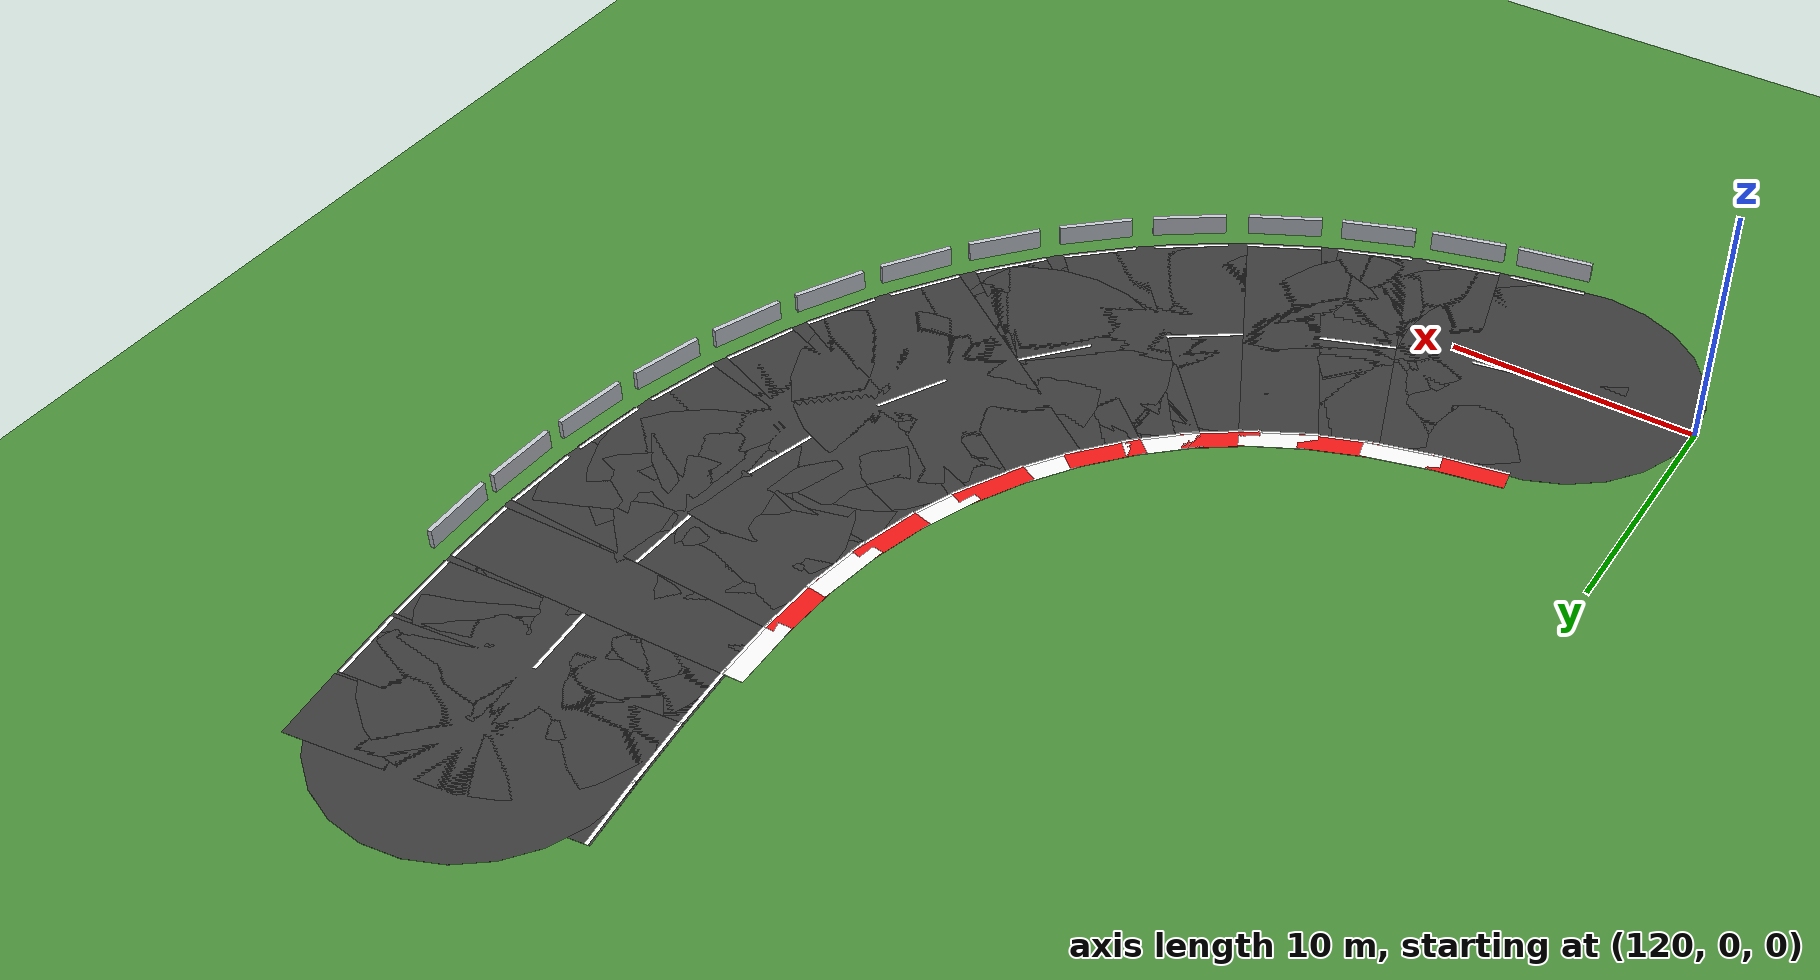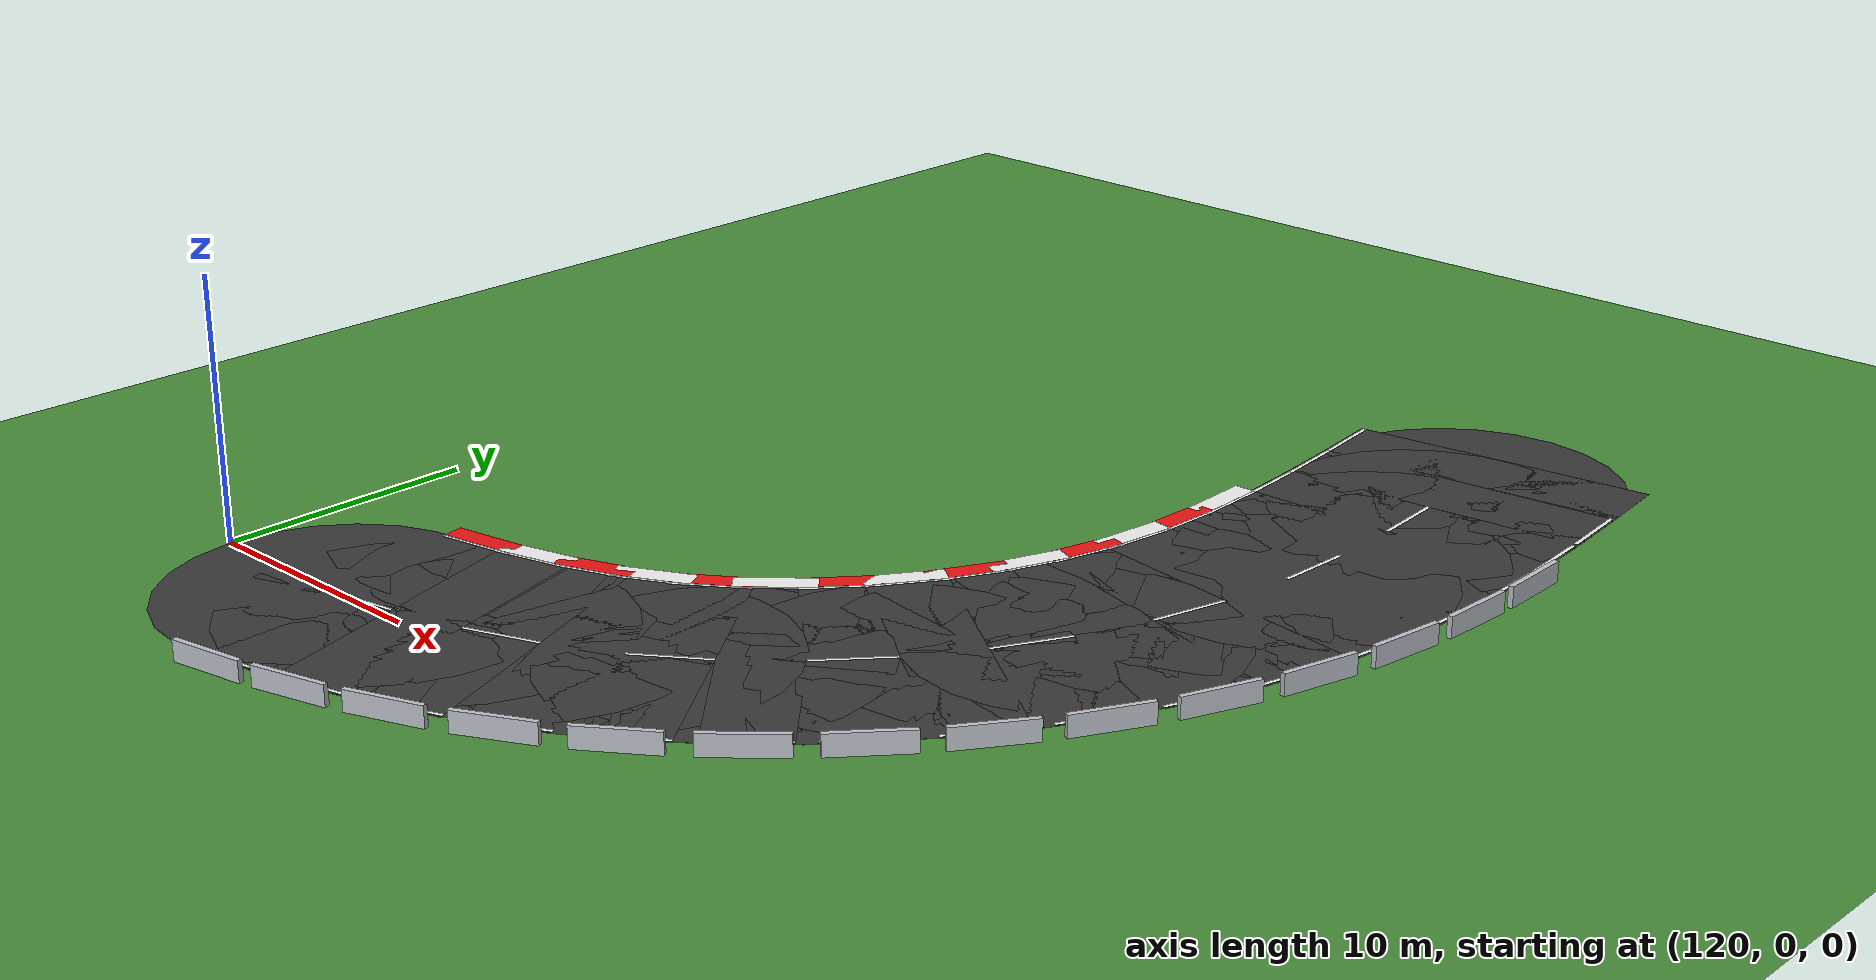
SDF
<sdf version="1.6">
 <world name="sem_silesia_ring_2026">
  <model name="ground_plane">
   <static>true</static>
   <link name="link">
    <collision name="collision">
     <geometry><plane><normal>0 0 1</normal><size>1200 1200</size></plane></geometry>
     <surface><friction><ode><mu>0.6</mu><mu2>0.6</mu2></ode></friction></surface>
    </collision>
    <visual name="visual">
     <geometry><plane><normal>0 0 1</normal><size>1200 1200</size></plane></geometry>
     <material><ambient>0.28 0.55 0.22 1</ambient><diffuse>0.28 0.55 0.22 1</diffuse></material>
    </visual>
   </link>
  </model>
  <model name="road_s42">
   <static>true</static>
   <pose>127.4804 0.1931 0.0030 0 0 0.1788</pose>
   <link name="link">
    <visual name="v">
     <geometry><box><size>3.0019 12.0000 0.0060</size></box></geometry>
     <material><ambient>0.22 0.22 0.22 1</ambient><diffuse>0.22 0.22 0.22 1</diffuse></material>
    </visual>
    <collision name="c">
     <geometry><box><size>3.0019 12.0000 0.0060</size></box></geometry>
     <surface><friction><ode><mu>0.9</mu><mu2>0.9</mu2></ode></friction></surface>
    </collision>
   </link>
  </model>
  <model name="road_jnt42">
   <static>true</static>
   <pose>126.0033 -0.0738 0.0030 0 0 0</pose>
   <link name="link">
    <visual name="v">
     <geometry><cylinder><radius>6.0000</radius><length>0.0060</length></cylinder></geometry>
     <material><ambient>0.22 0.22 0.22 1</ambient><diffuse>0.22 0.22 0.22 1</diffuse></material>
    </visual>
    <collision name="c">
     <geometry><cylinder><radius>6.0000</radius><length>0.0060</length></cylinder></geometry>
     <surface><friction><ode><mu>0.9</mu><mu2>0.9</mu2></ode></friction></surface>
    </collision>
   </link>
  </model>
  <model name="wl_L_s42">
   <static>true</static>
   <pose>126.4400 5.9499 0.0070 0 0 0.1788</pose>
   <link name="link">
    <visual name="v">
     <geometry><box><size>3.0019 0.1500 0.0080</size></box></geometry>
     <material><ambient>0.95 0.95 0.95 1</ambient><diffuse>0.95 0.95 0.95 1</diffuse></material>
    </visual>
   </link>
  </model>
  <model name="wl_R_s42">
   <static>true</static>
   <pose>128.5207 -5.5636 0.0070 0 0 0.1788</pose>
   <link name="link">
    <visual name="v">
     <geometry><box><size>3.0019 0.1500 0.0080</size></box></geometry>
     <material><ambient>0.95 0.95 0.95 1</ambient><diffuse>0.95 0.95 0.95 1</diffuse></material>
    </visual>
   </link>
  </model>
  <model name="cd_s42">
   <static>true</static>
   <pose>127.4804 0.1931 0.0070 0 0 0.1788</pose>
   <link name="link">
    <visual name="v">
     <geometry><box><size>3.0019 0.1500 0.0080</size></box></geometry>
     <material><ambient>0.95 0.95 0.95 1</ambient><diffuse>0.95 0.95 0.95 1</diffuse></material>
    </visual>
   </link>
  </model>
  <model name="kerb_L_42">
   <static>true</static>
   <pose>126.3600 6.3927 0.0120 0 0 0.1788</pose>
   <link name="link">
    <visual name="v">
     <geometry><box><size>3.0019 0.8000 0.0160</size></box></geometry>
     <material><ambient>0.92 0.08 0.08 1</ambient><diffuse>0.92 0.08 0.08 1</diffuse></material>
    </visual>
   </link>
  </model>
  <model name="arm_outR_42">
   <static>true</static>
   <pose>128.6897 -6.4985 0.4000 0 0 0.1788</pose>
   <link name="link">
    <visual name="v">
     <geometry><box><size>3.0019 0.2000 0.8000</size></box></geometry>
     <material><ambient>0.75 0.77 0.80 1</ambient><diffuse>0.75 0.77 0.80 1</diffuse></material>
    </visual>
    <collision name="c">
     <geometry><box><size>3.0019 0.2000 0.8000</size></box></geometry>
     <surface><friction><ode><mu>0.8</mu><mu2>0.8</mu2></ode></friction></surface>
    </collision>
   </link>
  </model>
  <model name="road_s43">
   <static>true</static>
   <pose>130.4088 0.8418 0.0030 0 0 0.2572</pose>
   <link name="link">
    <visual name="v">
     <geometry><box><size>3.0016 12.0000 0.0060</size></box></geometry>
     <material><ambient>0.22 0.22 0.22 1</ambient><diffuse>0.22 0.22 0.22 1</diffuse></material>
    </visual>
    <collision name="c">
     <geometry><box><size>3.0016 12.0000 0.0060</size></box></geometry>
     <surface><friction><ode><mu>0.9</mu><mu2>0.9</mu2></ode></friction></surface>
    </collision>
   </link>
  </model>
  <model name="road_jnt43">
   <static>true</static>
   <pose>128.9574 0.4600 0.0030 0 0 0</pose>
   <link name="link">
    <visual name="v">
     <geometry><cylinder><radius>6.0000</radius><length>0.0060</length></cylinder></geometry>
     <material><ambient>0.22 0.22 0.22 1</ambient><diffuse>0.22 0.22 0.22 1</diffuse></material>
    </visual>
    <collision name="c">
     <geometry><cylinder><radius>6.0000</radius><length>0.0060</length></cylinder></geometry>
     <surface><friction><ode><mu>0.9</mu><mu2>0.9</mu2></ode></friction></surface>
    </collision>
   </link>
  </model>
  <model name="wl_L_s43">
   <static>true</static>
   <pose>128.9207 6.4994 0.0070 0 0 0.2572</pose>
   <link name="link">
    <visual name="v">
     <geometry><box><size>3.0016 0.1500 0.0080</size></box></geometry>
     <material><ambient>0.95 0.95 0.95 1</ambient><diffuse>0.95 0.95 0.95 1</diffuse></material>
    </visual>
   </link>
  </model>
  <model name="wl_R_s43">
   <static>true</static>
   <pose>131.8969 -4.8157 0.0070 0 0 0.2572</pose>
   <link name="link">
    <visual name="v">
     <geometry><box><size>3.0016 0.1500 0.0080</size></box></geometry>
     <material><ambient>0.95 0.95 0.95 1</ambient><diffuse>0.95 0.95 0.95 1</diffuse></material>
    </visual>
   </link>
  </model>
  <model name="kerb_L_43">
   <static>true</static>
   <pose>128.8062 6.9346 0.0120 0 0 0.2572</pose>
   <link name="link">
    <visual name="v">
     <geometry><box><size>3.0016 0.8000 0.0160</size></box></geometry>
     <material><ambient>0.95 0.95 0.95 1</ambient><diffuse>0.95 0.95 0.95 1</diffuse></material>
    </visual>
   </link>
  </model>
  <model name="arm_outR_43">
   <static>true</static>
   <pose>132.1386 -5.7345 0.4000 0 0 0.2572</pose>
   <link name="link">
    <visual name="v">
     <geometry><box><size>3.0016 0.2000 0.8000</size></box></geometry>
     <material><ambient>0.75 0.77 0.80 1</ambient><diffuse>0.75 0.77 0.80 1</diffuse></material>
    </visual>
    <collision name="c">
     <geometry><box><size>3.0016 0.2000 0.8000</size></box></geometry>
     <surface><friction><ode><mu>0.8</mu><mu2>0.8</mu2></ode></friction></surface>
    </collision>
   </link>
  </model>
  <model name="road_s44">
   <static>true</static>
   <pose>133.2665 1.7469 0.0030 0 0 0.3562</pose>
   <link name="link">
    <visual name="v">
     <geometry><box><size>3.0010 12.0000 0.0060</size></box></geometry>
     <material><ambient>0.22 0.22 0.22 1</ambient><diffuse>0.22 0.22 0.22 1</diffuse></material>
    </visual>
    <collision name="c">
     <geometry><box><size>3.0010 12.0000 0.0060</size></box></geometry>
     <surface><friction><ode><mu>0.9</mu><mu2>0.9</mu2></ode></friction></surface>
    </collision>
   </link>
  </model>
  <model name="road_jnt44">
   <static>true</static>
   <pose>131.8602 1.2236 0.0030 0 0 0</pose>
   <link name="link">
    <visual name="v">
     <geometry><cylinder><radius>6.0000</radius><length>0.0060</length></cylinder></geometry>
     <material><ambient>0.22 0.22 0.22 1</ambient><diffuse>0.22 0.22 0.22 1</diffuse></material>
    </visual>
    <collision name="c">
     <geometry><cylinder><radius>6.0000</radius><length>0.0060</length></cylinder></geometry>
     <surface><friction><ode><mu>0.9</mu><mu2>0.9</mu2></ode></friction></surface>
    </collision>
   </link>
  </model>
  <model name="wl_L_s44">
   <static>true</static>
   <pose>131.2265 7.2296 0.0070 0 0 0.3562</pose>
   <link name="link">
    <visual name="v">
     <geometry><box><size>3.0010 0.1500 0.0080</size></box></geometry>
     <material><ambient>0.95 0.95 0.95 1</ambient><diffuse>0.95 0.95 0.95 1</diffuse></material>
    </visual>
   </link>
  </model>
  <model name="wl_R_s44">
   <static>true</static>
   <pose>135.3066 -3.7359 0.0070 0 0 0.3562</pose>
   <link name="link">
    <visual name="v">
     <geometry><box><size>3.0010 0.1500 0.0080</size></box></geometry>
     <material><ambient>0.95 0.95 0.95 1</ambient><diffuse>0.95 0.95 0.95 1</diffuse></material>
    </visual>
   </link>
  </model>
  <model name="cd_s44">
   <static>true</static>
   <pose>133.2665 1.7469 0.0070 0 0 0.3562</pose>
   <link name="link">
    <visual name="v">
     <geometry><box><size>3.0010 0.1500 0.0080</size></box></geometry>
     <material><ambient>0.95 0.95 0.95 1</ambient><diffuse>0.95 0.95 0.95 1</diffuse></material>
    </visual>
   </link>
  </model>
  <model name="kerb_L_44">
   <static>true</static>
   <pose>131.0696 7.6514 0.0120 0 0 0.3562</pose>
   <link name="link">
    <visual name="v">
     <geometry><box><size>3.0010 0.8000 0.0160</size></box></geometry>
     <material><ambient>0.92 0.08 0.08 1</ambient><diffuse>0.92 0.08 0.08 1</diffuse></material>
    </visual>
   </link>
  </model>
  <model name="arm_outR_44">
   <static>true</static>
   <pose>135.6379 -4.6263 0.4000 0 0 0.3562</pose>
   <link name="link">
    <visual name="v">
     <geometry><box><size>3.0010 0.2000 0.8000</size></box></geometry>
     <material><ambient>0.75 0.77 0.80 1</ambient><diffuse>0.75 0.77 0.80 1</diffuse></material>
    </visual>
    <collision name="c">
     <geometry><box><size>3.0010 0.2000 0.8000</size></box></geometry>
     <surface><friction><ode><mu>0.8</mu><mu2>0.8</mu2></ode></friction></surface>
    </collision>
   </link>
  </model>
  <model name="road_s45">
   <static>true</static>
   <pose>136.0057 2.9587 0.0030 0 0 0.4769</pose>
   <link name="link">
    <visual name="v">
     <geometry><box><size>3.0004 12.0000 0.0060</size></box></geometry>
     <material><ambient>0.22 0.22 0.22 1</ambient><diffuse>0.22 0.22 0.22 1</diffuse></material>
    </visual>
    <collision name="c">
     <geometry><box><size>3.0004 12.0000 0.0060</size></box></geometry>
     <surface><friction><ode><mu>0.9</mu><mu2>0.9</mu2></ode></friction></surface>
    </collision>
   </link>
  </model>
  <model name="road_jnt45">
   <static>true</static>
   <pose>134.6729 2.2701 0.0030 0 0 0</pose>
   <link name="link">
    <visual name="v">
     <geometry><cylinder><radius>6.0000</radius><length>0.0060</length></cylinder></geometry>
     <material><ambient>0.22 0.22 0.22 1</ambient><diffuse>0.22 0.22 0.22 1</diffuse></material>
    </visual>
    <collision name="c">
     <geometry><cylinder><radius>6.0000</radius><length>0.0060</length></cylinder></geometry>
     <surface><friction><ode><mu>0.9</mu><mu2>0.9</mu2></ode></friction></surface>
    </collision>
   </link>
  </model>
  <model name="wl_L_s45">
   <static>true</static>
   <pose>133.3204 8.1560 0.0070 0 0 0.4769</pose>
   <link name="link">
    <visual name="v">
     <geometry><box><size>3.0004 0.1500 0.0080</size></box></geometry>
     <material><ambient>0.95 0.95 0.95 1</ambient><diffuse>0.95 0.95 0.95 1</diffuse></material>
    </visual>
   </link>
  </model>
  <model name="wl_R_s45">
   <static>true</static>
   <pose>138.6909 -2.2386 0.0070 0 0 0.4769</pose>
   <link name="link">
    <visual name="v">
     <geometry><box><size>3.0004 0.1500 0.0080</size></box></geometry>
     <material><ambient>0.95 0.95 0.95 1</ambient><diffuse>0.95 0.95 0.95 1</diffuse></material>
    </visual>
   </link>
  </model>
  <model name="kerb_L_45">
   <static>true</static>
   <pose>133.1139 8.5558 0.0120 0 0 0.4769</pose>
   <link name="link">
    <visual name="v">
     <geometry><box><size>3.0004 0.8000 0.0160</size></box></geometry>
     <material><ambient>0.95 0.95 0.95 1</ambient><diffuse>0.95 0.95 0.95 1</diffuse></material>
    </visual>
   </link>
  </model>
  <model name="arm_outR_45">
   <static>true</static>
   <pose>139.1270 -3.0826 0.4000 0 0 0.4769</pose>
   <link name="link">
    <visual name="v">
     <geometry><box><size>3.0004 0.2000 0.8000</size></box></geometry>
     <material><ambient>0.75 0.77 0.80 1</ambient><diffuse>0.75 0.77 0.80 1</diffuse></material>
    </visual>
    <collision name="c">
     <geometry><box><size>3.0004 0.2000 0.8000</size></box></geometry>
     <surface><friction><ode><mu>0.8</mu><mu2>0.8</mu2></ode></friction></surface>
    </collision>
   </link>
  </model>
  <model name="road_s46">
   <static>true</static>
   <pose>138.5668 4.5086 0.0030 0 0 0.6115</pose>
   <link name="link">
    <visual name="v">
     <geometry><box><size>3.0003 12.0000 0.0060</size></box></geometry>
     <material><ambient>0.22 0.22 0.22 1</ambient><diffuse>0.22 0.22 0.22 1</diffuse></material>
    </visual>
    <collision name="c">
     <geometry><box><size>3.0003 12.0000 0.0060</size></box></geometry>
     <surface><friction><ode><mu>0.9</mu><mu2>0.9</mu2></ode></friction></surface>
    </collision>
   </link>
  </model>
  <model name="road_jnt46">
   <static>true</static>
   <pose>137.3385 3.6473 0.0030 0 0 0</pose>
   <link name="link">
    <visual name="v">
     <geometry><cylinder><radius>6.0000</radius><length>0.0060</length></cylinder></geometry>
     <material><ambient>0.22 0.22 0.22 1</ambient><diffuse>0.22 0.22 0.22 1</diffuse></material>
    </visual>
    <collision name="c">
     <geometry><cylinder><radius>6.0000</radius><length>0.0060</length></cylinder></geometry>
     <surface><friction><ode><mu>0.9</mu><mu2>0.9</mu2></ode></friction></surface>
    </collision>
   </link>
  </model>
  <model name="wl_L_s46">
   <static>true</static>
   <pose>135.2083 9.2985 0.0070 0 0 0.6115</pose>
   <link name="link">
    <visual name="v">
     <geometry><box><size>3.0003 0.1500 0.0080</size></box></geometry>
     <material><ambient>0.95 0.95 0.95 1</ambient><diffuse>0.95 0.95 0.95 1</diffuse></material>
    </visual>
   </link>
  </model>
  <model name="wl_R_s46">
   <static>true</static>
   <pose>141.9253 -0.2813 0.0070 0 0 0.6115</pose>
   <link name="link">
    <visual name="v">
     <geometry><box><size>3.0003 0.1500 0.0080</size></box></geometry>
     <material><ambient>0.95 0.95 0.95 1</ambient><diffuse>0.95 0.95 0.95 1</diffuse></material>
    </visual>
   </link>
  </model>
  <model name="cd_s46">
   <static>true</static>
   <pose>138.5668 4.5086 0.0070 0 0 0.6115</pose>
   <link name="link">
    <visual name="v">
     <geometry><box><size>3.0003 0.1500 0.0080</size></box></geometry>
     <material><ambient>0.95 0.95 0.95 1</ambient><diffuse>0.95 0.95 0.95 1</diffuse></material>
    </visual>
   </link>
  </model>
  <model name="kerb_L_46">
   <static>true</static>
   <pose>134.9499 9.6669 0.0120 0 0 0.6115</pose>
   <link name="link">
    <visual name="v">
     <geometry><box><size>3.0003 0.8000 0.0160</size></box></geometry>
     <material><ambient>0.92 0.08 0.08 1</ambient><diffuse>0.92 0.08 0.08 1</diffuse></material>
    </visual>
   </link>
  </model>
  <model name="arm_outR_46">
   <static>true</static>
   <pose>142.4707 -1.0592 0.4000 0 0 0.6115</pose>
   <link name="link">
    <visual name="v">
     <geometry><box><size>3.0003 0.2000 0.8000</size></box></geometry>
     <material><ambient>0.75 0.77 0.80 1</ambient><diffuse>0.75 0.77 0.80 1</diffuse></material>
    </visual>
    <collision name="c">
     <geometry><box><size>3.0003 0.2000 0.8000</size></box></geometry>
     <surface><friction><ode><mu>0.8</mu><mu2>0.8</mu2></ode></friction></surface>
    </collision>
   </link>
  </model>
  <model name="road_s47">
   <static>true</static>
   <pose>140.9021 6.3824 0.0030 0 0 0.7409</pose>
   <link name="link">
    <visual name="v">
     <geometry><box><size>3.0006 12.0000 0.0060</size></box></geometry>
     <material><ambient>0.22 0.22 0.22 1</ambient><diffuse>0.22 0.22 0.22 1</diffuse></material>
    </visual>
    <collision name="c">
     <geometry><box><size>3.0006 12.0000 0.0060</size></box></geometry>
     <surface><friction><ode><mu>0.9</mu><mu2>0.9</mu2></ode></friction></surface>
    </collision>
   </link>
  </model>
  <model name="road_jnt47">
   <static>true</static>
   <pose>139.7951 5.3698 0.0030 0 0 0</pose>
   <link name="link">
    <visual name="v">
     <geometry><cylinder><radius>6.0000</radius><length>0.0060</length></cylinder></geometry>
     <material><ambient>0.22 0.22 0.22 1</ambient><diffuse>0.22 0.22 0.22 1</diffuse></material>
    </visual>
    <collision name="c">
     <geometry><cylinder><radius>6.0000</radius><length>0.0060</length></cylinder></geometry>
     <surface><friction><ode><mu>0.9</mu><mu2>0.9</mu2></ode></friction></surface>
    </collision>
   </link>
  </model>
  <model name="wl_L_s47">
   <static>true</static>
   <pose>136.9537 10.6990 0.0070 0 0 0.7409</pose>
   <link name="link">
    <visual name="v">
     <geometry><box><size>3.0006 0.1500 0.0080</size></box></geometry>
     <material><ambient>0.95 0.95 0.95 1</ambient><diffuse>0.95 0.95 0.95 1</diffuse></material>
    </visual>
   </link>
  </model>
  <model name="wl_R_s47">
   <static>true</static>
   <pose>144.8505 2.0658 0.0070 0 0 0.7409</pose>
   <link name="link">
    <visual name="v">
     <geometry><box><size>3.0006 0.1500 0.0080</size></box></geometry>
     <material><ambient>0.95 0.95 0.95 1</ambient><diffuse>0.95 0.95 0.95 1</diffuse></material>
    </visual>
   </link>
  </model>
  <model name="kerb_L_47">
   <static>true</static>
   <pose>136.6500 11.0310 0.0120 0 0 0.7409</pose>
   <link name="link">
    <visual name="v">
     <geometry><box><size>3.0006 0.8000 0.0160</size></box></geometry>
     <material><ambient>0.95 0.95 0.95 1</ambient><diffuse>0.95 0.95 0.95 1</diffuse></material>
    </visual>
   </link>
  </model>
  <model name="arm_outR_47">
   <static>true</static>
   <pose>145.4917 1.3649 0.4000 0 0 0.7409</pose>
   <link name="link">
    <visual name="v">
     <geometry><box><size>3.0006 0.2000 0.8000</size></box></geometry>
     <material><ambient>0.75 0.77 0.80 1</ambient><diffuse>0.75 0.77 0.80 1</diffuse></material>
    </visual>
    <collision name="c">
     <geometry><box><size>3.0006 0.2000 0.8000</size></box></geometry>
     <surface><friction><ode><mu>0.8</mu><mu2>0.8</mu2></ode></friction></surface>
    </collision>
   </link>
  </model>
  <model name="road_s48">
   <static>true</static>
   <pose>142.9847 8.5350 0.0030 0 0 0.8629</pose>
   <link name="link">
    <visual name="v">
     <geometry><box><size>3.0008 12.0000 0.0060</size></box></geometry>
     <material><ambient>0.22 0.22 0.22 1</ambient><diffuse>0.22 0.22 0.22 1</diffuse></material>
    </visual>
    <collision name="c">
     <geometry><box><size>3.0008 12.0000 0.0060</size></box></geometry>
     <surface><friction><ode><mu>0.9</mu><mu2>0.9</mu2></ode></friction></surface>
    </collision>
   </link>
  </model>
  <model name="road_jnt48">
   <static>true</static>
   <pose>142.0091 7.3950 0.0030 0 0 0</pose>
   <link name="link">
    <visual name="v">
     <geometry><cylinder><radius>6.0000</radius><length>0.0060</length></cylinder></geometry>
     <material><ambient>0.22 0.22 0.22 1</ambient><diffuse>0.22 0.22 0.22 1</diffuse></material>
    </visual>
    <collision name="c">
     <geometry><cylinder><radius>6.0000</radius><length>0.0060</length></cylinder></geometry>
     <surface><friction><ode><mu>0.9</mu><mu2>0.9</mu2></ode></friction></surface>
    </collision>
   </link>
  </model>
  <model name="wl_L_s48">
   <static>true</static>
   <pose>138.5401 12.3386 0.0070 0 0 0.8629</pose>
   <link name="link">
    <visual name="v">
     <geometry><box><size>3.0008 0.1500 0.0080</size></box></geometry>
     <material><ambient>0.95 0.95 0.95 1</ambient><diffuse>0.95 0.95 0.95 1</diffuse></material>
    </visual>
   </link>
  </model>
  <model name="wl_R_s48">
   <static>true</static>
   <pose>147.4293 4.7313 0.0070 0 0 0.8629</pose>
   <link name="link">
    <visual name="v">
     <geometry><box><size>3.0008 0.1500 0.0080</size></box></geometry>
     <material><ambient>0.95 0.95 0.95 1</ambient><diffuse>0.95 0.95 0.95 1</diffuse></material>
    </visual>
   </link>
  </model>
  <model name="cd_s48">
   <static>true</static>
   <pose>142.9847 8.5350 0.0070 0 0 0.8629</pose>
   <link name="link">
    <visual name="v">
     <geometry><box><size>3.0008 0.1500 0.0080</size></box></geometry>
     <material><ambient>0.95 0.95 0.95 1</ambient><diffuse>0.95 0.95 0.95 1</diffuse></material>
    </visual>
   </link>
  </model>
  <model name="kerb_L_48">
   <static>true</static>
   <pose>138.1982 12.6312 0.0120 0 0 0.8629</pose>
   <link name="link">
    <visual name="v">
     <geometry><box><size>3.0008 0.8000 0.0160</size></box></geometry>
     <material><ambient>0.92 0.08 0.08 1</ambient><diffuse>0.92 0.08 0.08 1</diffuse></material>
    </visual>
   </link>
  </model>
  <model name="arm_outR_48">
   <static>true</static>
   <pose>148.1511 4.1136 0.4000 0 0 0.8629</pose>
   <link name="link">
    <visual name="v">
     <geometry><box><size>3.0008 0.2000 0.8000</size></box></geometry>
     <material><ambient>0.75 0.77 0.80 1</ambient><diffuse>0.75 0.77 0.80 1</diffuse></material>
    </visual>
    <collision name="c">
     <geometry><box><size>3.0008 0.2000 0.8000</size></box></geometry>
     <surface><friction><ode><mu>0.8</mu><mu2>0.8</mu2></ode></friction></surface>
    </collision>
   </link>
  </model>
  <model name="road_s49">
   <static>true</static>
   <pose>144.7962 10.9209 0.0030 0 0 0.9798</pose>
   <link name="link">
    <visual name="v">
     <geometry><box><size>3.0009 12.0000 0.0060</size></box></geometry>
     <material><ambient>0.22 0.22 0.22 1</ambient><diffuse>0.22 0.22 0.22 1</diffuse></material>
    </visual>
    <collision name="c">
     <geometry><box><size>3.0009 12.0000 0.0060</size></box></geometry>
     <surface><friction><ode><mu>0.9</mu><mu2>0.9</mu2></ode></friction></surface>
    </collision>
   </link>
  </model>
  <model name="road_jnt49">
   <static>true</static>
   <pose>143.9602 9.6749 0.0030 0 0 0</pose>
   <link name="link">
    <visual name="v">
     <geometry><cylinder><radius>6.0000</radius><length>0.0060</length></cylinder></geometry>
     <material><ambient>0.22 0.22 0.22 1</ambient><diffuse>0.22 0.22 0.22 1</diffuse></material>
    </visual>
    <collision name="c">
     <geometry><cylinder><radius>6.0000</radius><length>0.0060</length></cylinder></geometry>
     <surface><friction><ode><mu>0.9</mu><mu2>0.9</mu2></ode></friction></surface>
    </collision>
   </link>
  </model>
  <model name="wl_L_s49">
   <static>true</static>
   <pose>139.9384 14.1803 0.0070 0 0 0.9798</pose>
   <link name="link">
    <visual name="v">
     <geometry><box><size>3.0009 0.1500 0.0080</size></box></geometry>
     <material><ambient>0.95 0.95 0.95 1</ambient><diffuse>0.95 0.95 0.95 1</diffuse></material>
    </visual>
   </link>
  </model>
  <model name="wl_R_s49">
   <static>true</static>
   <pose>149.6541 7.6614 0.0070 0 0 0.9798</pose>
   <link name="link">
    <visual name="v">
     <geometry><box><size>3.0009 0.1500 0.0080</size></box></geometry>
     <material><ambient>0.95 0.95 0.95 1</ambient><diffuse>0.95 0.95 0.95 1</diffuse></material>
    </visual>
   </link>
  </model>
  <model name="kerb_L_49">
   <static>true</static>
   <pose>139.5648 14.4311 0.0120 0 0 0.9798</pose>
   <link name="link">
    <visual name="v">
     <geometry><box><size>3.0009 0.8000 0.0160</size></box></geometry>
     <material><ambient>0.95 0.95 0.95 1</ambient><diffuse>0.95 0.95 0.95 1</diffuse></material>
    </visual>
   </link>
  </model>
  <model name="arm_outR_49">
   <static>true</static>
   <pose>150.4429 7.1321 0.4000 0 0 0.9798</pose>
   <link name="link">
    <visual name="v">
     <geometry><box><size>3.0009 0.2000 0.8000</size></box></geometry>
     <material><ambient>0.75 0.77 0.80 1</ambient><diffuse>0.75 0.77 0.80 1</diffuse></material>
    </visual>
    <collision name="c">
     <geometry><box><size>3.0009 0.2000 0.8000</size></box></geometry>
     <surface><friction><ode><mu>0.8</mu><mu2>0.8</mu2></ode></friction></surface>
    </collision>
   </link>
  </model>
  <model name="road_s50">
   <static>true</static>
   <pose>146.3211 13.4998 0.0030 0 0 1.0938</pose>
   <link name="link">
    <visual name="v">
     <geometry><box><size>3.0009 12.0000 0.0060</size></box></geometry>
     <material><ambient>0.22 0.22 0.22 1</ambient><diffuse>0.22 0.22 0.22 1</diffuse></material>
    </visual>
    <collision name="c">
     <geometry><box><size>3.0009 12.0000 0.0060</size></box></geometry>
     <surface><friction><ode><mu>0.9</mu><mu2>0.9</mu2></ode></friction></surface>
    </collision>
   </link>
  </model>
  <model name="road_jnt50">
   <static>true</static>
   <pose>145.6323 12.1668 0.0030 0 0 0</pose>
   <link name="link">
    <visual name="v">
     <geometry><cylinder><radius>6.0000</radius><length>0.0060</length></cylinder></geometry>
     <material><ambient>0.22 0.22 0.22 1</ambient><diffuse>0.22 0.22 0.22 1</diffuse></material>
    </visual>
    <collision name="c">
     <geometry><cylinder><radius>6.0000</radius><length>0.0060</length></cylinder></geometry>
     <surface><friction><ode><mu>0.9</mu><mu2>0.9</mu2></ode></friction></surface>
    </collision>
   </link>
  </model>
  <model name="wl_L_s50">
   <static>true</static>
   <pose>141.1240 16.1855 0.0070 0 0 1.0938</pose>
   <link name="link">
    <visual name="v">
     <geometry><box><size>3.0009 0.1500 0.0080</size></box></geometry>
     <material><ambient>0.95 0.95 0.95 1</ambient><diffuse>0.95 0.95 0.95 1</diffuse></material>
    </visual>
   </link>
  </model>
  <model name="wl_R_s50">
   <static>true</static>
   <pose>151.5182 10.8141 0.0070 0 0 1.0938</pose>
   <link name="link">
    <visual name="v">
     <geometry><box><size>3.0009 0.1500 0.0080</size></box></geometry>
     <material><ambient>0.95 0.95 0.95 1</ambient><diffuse>0.95 0.95 0.95 1</diffuse></material>
    </visual>
   </link>
  </model>
  <model name="cd_s50">
   <static>true</static>
   <pose>146.3211 13.4998 0.0070 0 0 1.0938</pose>
   <link name="link">
    <visual name="v">
     <geometry><box><size>3.0009 0.1500 0.0080</size></box></geometry>
     <material><ambient>0.95 0.95 0.95 1</ambient><diffuse>0.95 0.95 0.95 1</diffuse></material>
    </visual>
   </link>
  </model>
  <model name="kerb_L_50">
   <static>true</static>
   <pose>140.7243 16.3921 0.0120 0 0 1.0938</pose>
   <link name="link">
    <visual name="v">
     <geometry><box><size>3.0009 0.8000 0.0160</size></box></geometry>
     <material><ambient>0.92 0.08 0.08 1</ambient><diffuse>0.92 0.08 0.08 1</diffuse></material>
    </visual>
   </link>
  </model>
  <model name="arm_outR_50">
   <static>true</static>
   <pose>152.3622 10.3780 0.4000 0 0 1.0938</pose>
   <link name="link">
    <visual name="v">
     <geometry><box><size>3.0009 0.2000 0.8000</size></box></geometry>
     <material><ambient>0.75 0.77 0.80 1</ambient><diffuse>0.75 0.77 0.80 1</diffuse></material>
    </visual>
    <collision name="c">
     <geometry><box><size>3.0009 0.2000 0.8000</size></box></geometry>
     <surface><friction><ode><mu>0.8</mu><mu2>0.8</mu2></ode></friction></surface>
    </collision>
   </link>
  </model>
  <model name="road_s51">
   <static>true</static>
   <pose>147.5434 16.2352 0.0030 0 0 1.2073</pose>
   <link name="link">
    <visual name="v">
     <geometry><box><size>3.0009 12.0000 0.0060</size></box></geometry>
     <material><ambient>0.22 0.22 0.22 1</ambient><diffuse>0.22 0.22 0.22 1</diffuse></material>
    </visual>
    <collision name="c">
     <geometry><box><size>3.0009 12.0000 0.0060</size></box></geometry>
     <surface><friction><ode><mu>0.9</mu><mu2>0.9</mu2></ode></friction></surface>
    </collision>
   </link>
  </model>
  <model name="road_jnt51">
   <static>true</static>
   <pose>147.0100 14.8328 0.0030 0 0 0</pose>
   <link name="link">
    <visual name="v">
     <geometry><cylinder><radius>6.0000</radius><length>0.0060</length></cylinder></geometry>
     <material><ambient>0.22 0.22 0.22 1</ambient><diffuse>0.22 0.22 0.22 1</diffuse></material>
    </visual>
    <collision name="c">
     <geometry><cylinder><radius>6.0000</radius><length>0.0060</length></cylinder></geometry>
     <surface><friction><ode><mu>0.9</mu><mu2>0.9</mu2></ode></friction></surface>
    </collision>
   </link>
  </model>
  <model name="wl_L_s51">
   <static>true</static>
   <pose>142.0756 18.3151 0.0070 0 0 1.2073</pose>
   <link name="link">
    <visual name="v">
     <geometry><box><size>3.0009 0.1500 0.0080</size></box></geometry>
     <material><ambient>0.95 0.95 0.95 1</ambient><diffuse>0.95 0.95 0.95 1</diffuse></material>
    </visual>
   </link>
  </model>
  <model name="wl_R_s51">
   <static>true</static>
   <pose>153.0112 14.1554 0.0070 0 0 1.2073</pose>
   <link name="link">
    <visual name="v">
     <geometry><box><size>3.0009 0.1500 0.0080</size></box></geometry>
     <material><ambient>0.95 0.95 0.95 1</ambient><diffuse>0.95 0.95 0.95 1</diffuse></material>
    </visual>
   </link>
  </model>
  <model name="kerb_L_51">
   <static>true</static>
   <pose>141.6550 18.4751 0.0120 0 0 1.2073</pose>
   <link name="link">
    <visual name="v">
     <geometry><box><size>3.0009 0.8000 0.0160</size></box></geometry>
     <material><ambient>0.95 0.95 0.95 1</ambient><diffuse>0.95 0.95 0.95 1</diffuse></material>
    </visual>
   </link>
  </model>
  <model name="arm_outR_51">
   <static>true</static>
   <pose>153.8991 13.8176 0.4000 0 0 1.2073</pose>
   <link name="link">
    <visual name="v">
     <geometry><box><size>3.0009 0.2000 0.8000</size></box></geometry>
     <material><ambient>0.75 0.77 0.80 1</ambient><diffuse>0.75 0.77 0.80 1</diffuse></material>
    </visual>
    <collision name="c">
     <geometry><box><size>3.0009 0.2000 0.8000</size></box></geometry>
     <surface><friction><ode><mu>0.8</mu><mu2>0.8</mu2></ode></friction></surface>
    </collision>
   </link>
  </model>
  <model name="road_s52">
   <static>true</static>
   <pose>148.4456 19.0921 0.0030 0 0 1.3225</pose>
   <link name="link">
    <visual name="v">
     <geometry><box><size>3.0008 12.0000 0.0060</size></box></geometry>
     <material><ambient>0.22 0.22 0.22 1</ambient><diffuse>0.22 0.22 0.22 1</diffuse></material>
    </visual>
    <collision name="c">
     <geometry><box><size>3.0008 12.0000 0.0060</size></box></geometry>
     <surface><friction><ode><mu>0.9</mu><mu2>0.9</mu2></ode></friction></surface>
    </collision>
   </link>
  </model>
  <model name="road_jnt52">
   <static>true</static>
   <pose>148.0769 17.6377 0.0030 0 0 0</pose>
   <link name="link">
    <visual name="v">
     <geometry><cylinder><radius>6.0000</radius><length>0.0060</length></cylinder></geometry>
     <material><ambient>0.22 0.22 0.22 1</ambient><diffuse>0.22 0.22 0.22 1</diffuse></material>
    </visual>
    <collision name="c">
     <geometry><cylinder><radius>6.0000</radius><length>0.0060</length></cylinder></geometry>
     <surface><friction><ode><mu>0.9</mu><mu2>0.9</mu2></ode></friction></surface>
    </collision>
   </link>
  </model>
  <model name="wl_L_s52">
   <static>true</static>
   <pose>142.7751 20.5298 0.0070 0 0 1.3225</pose>
   <link name="link">
    <visual name="v">
     <geometry><box><size>3.0008 0.1500 0.0080</size></box></geometry>
     <material><ambient>0.95 0.95 0.95 1</ambient><diffuse>0.95 0.95 0.95 1</diffuse></material>
    </visual>
   </link>
  </model>
  <model name="wl_R_s52">
   <static>true</static>
   <pose>154.1162 17.6543 0.0070 0 0 1.3225</pose>
   <link name="link">
    <visual name="v">
     <geometry><box><size>3.0008 0.1500 0.0080</size></box></geometry>
     <material><ambient>0.95 0.95 0.95 1</ambient><diffuse>0.95 0.95 0.95 1</diffuse></material>
    </visual>
   </link>
  </model>
  <model name="cd_s52">
   <static>true</static>
   <pose>148.4456 19.0921 0.0070 0 0 1.3225</pose>
   <link name="link">
    <visual name="v">
     <geometry><box><size>3.0008 0.1500 0.0080</size></box></geometry>
     <material><ambient>0.95 0.95 0.95 1</ambient><diffuse>0.95 0.95 0.95 1</diffuse></material>
    </visual>
   </link>
  </model>
  <model name="kerb_L_52">
   <static>true</static>
   <pose>142.3389 20.6404 0.0120 0 0 1.3225</pose>
   <link name="link">
    <visual name="v">
     <geometry><box><size>3.0008 0.8000 0.0160</size></box></geometry>
     <material><ambient>0.92 0.08 0.08 1</ambient><diffuse>0.92 0.08 0.08 1</diffuse></material>
    </visual>
   </link>
  </model>
  <model name="arm_outR_52">
   <static>true</static>
   <pose>155.0371 17.4208 0.4000 0 0 1.3225</pose>
   <link name="link">
    <visual name="v">
     <geometry><box><size>3.0008 0.2000 0.8000</size></box></geometry>
     <material><ambient>0.75 0.77 0.80 1</ambient><diffuse>0.75 0.77 0.80 1</diffuse></material>
    </visual>
    <collision name="c">
     <geometry><box><size>3.0008 0.2000 0.8000</size></box></geometry>
     <surface><friction><ode><mu>0.8</mu><mu2>0.8</mu2></ode></friction></surface>
    </collision>
   </link>
  </model>
  <model name="road_s53">
   <static>true</static>
   <pose>149.0132 22.0338 0.0030 0 0 1.4379</pose>
   <link name="link">
    <visual name="v">
     <geometry><box><size>3.0010 12.0000 0.0060</size></box></geometry>
     <material><ambient>0.22 0.22 0.22 1</ambient><diffuse>0.22 0.22 0.22 1</diffuse></material>
    </visual>
    <collision name="c">
     <geometry><box><size>3.0010 12.0000 0.0060</size></box></geometry>
     <surface><friction><ode><mu>0.9</mu><mu2>0.9</mu2></ode></friction></surface>
    </collision>
   </link>
  </model>
  <model name="road_jnt53">
   <static>true</static>
   <pose>148.8144 20.5465 0.0030 0 0 0</pose>
   <link name="link">
    <visual name="v">
     <geometry><cylinder><radius>6.0000</radius><length>0.0060</length></cylinder></geometry>
     <material><ambient>0.22 0.22 0.22 1</ambient><diffuse>0.22 0.22 0.22 1</diffuse></material>
    </visual>
    <collision name="c">
     <geometry><cylinder><radius>6.0000</radius><length>0.0060</length></cylinder></geometry>
     <surface><friction><ode><mu>0.9</mu><mu2>0.9</mu2></ode></friction></surface>
    </collision>
   </link>
  </model>
  <model name="wl_L_s53">
   <static>true</static>
   <pose>143.2147 22.8087 0.0070 0 0 1.4379</pose>
   <link name="link">
    <visual name="v">
     <geometry><box><size>3.0010 0.1500 0.0080</size></box></geometry>
     <material><ambient>0.95 0.95 0.95 1</ambient><diffuse>0.95 0.95 0.95 1</diffuse></material>
    </visual>
   </link>
  </model>
  <model name="wl_R_s53">
   <static>true</static>
   <pose>154.8116 21.2588 0.0070 0 0 1.4379</pose>
   <link name="link">
    <visual name="v">
     <geometry><box><size>3.0010 0.1500 0.0080</size></box></geometry>
     <material><ambient>0.95 0.95 0.95 1</ambient><diffuse>0.95 0.95 0.95 1</diffuse></material>
    </visual>
   </link>
  </model>
  <model name="kerb_L_53">
   <static>true</static>
   <pose>142.7687 22.8684 0.0120 0 0 1.4379</pose>
   <link name="link">
    <visual name="v">
     <geometry><box><size>3.0010 0.8000 0.0160</size></box></geometry>
     <material><ambient>0.95 0.95 0.95 1</ambient><diffuse>0.95 0.95 0.95 1</diffuse></material>
    </visual>
   </link>
  </model>
  <model name="arm_outR_53">
   <static>true</static>
   <pose>155.7532 21.1329 0.4000 0 0 1.4379</pose>
   <link name="link">
    <visual name="v">
     <geometry><box><size>3.0010 0.2000 0.8000</size></box></geometry>
     <material><ambient>0.75 0.77 0.80 1</ambient><diffuse>0.75 0.77 0.80 1</diffuse></material>
    </visual>
    <collision name="c">
     <geometry><box><size>3.0010 0.2000 0.8000</size></box></geometry>
     <surface><friction><ode><mu>0.8</mu><mu2>0.8</mu2></ode></friction></surface>
    </collision>
   </link>
  </model>
  <model name="road_s54">
   <static>true</static>
   <pose>149.2661 25.0209 0.0030 0 0 1.5347</pose>
   <link name="link">
    <visual name="v">
     <geometry><box><size>3.0017 12.0000 0.0060</size></box></geometry>
     <material><ambient>0.22 0.22 0.22 1</ambient><diffuse>0.22 0.22 0.22 1</diffuse></material>
    </visual>
    <collision name="c">
     <geometry><box><size>3.0017 12.0000 0.0060</size></box></geometry>
     <surface><friction><ode><mu>0.9</mu><mu2>0.9</mu2></ode></friction></surface>
    </collision>
   </link>
  </model>
  <model name="road_jnt54">
   <static>true</static>
   <pose>149.2120 23.5210 0.0030 0 0 0</pose>
   <link name="link">
    <visual name="v">
     <geometry><cylinder><radius>6.0000</radius><length>0.0060</length></cylinder></geometry>
     <material><ambient>0.22 0.22 0.22 1</ambient><diffuse>0.22 0.22 0.22 1</diffuse></material>
    </visual>
    <collision name="c">
     <geometry><cylinder><radius>6.0000</radius><length>0.0060</length></cylinder></geometry>
     <surface><friction><ode><mu>0.9</mu><mu2>0.9</mu2></ode></friction></surface>
    </collision>
   </link>
  </model>
  <model name="wl_L_s54">
   <static>true</static>
   <pose>143.4199 25.2319 0.0070 0 0 1.5347</pose>
   <link name="link">
    <visual name="v">
     <geometry><box><size>3.0017 0.1500 0.0080</size></box></geometry>
     <material><ambient>0.95 0.95 0.95 1</ambient><diffuse>0.95 0.95 0.95 1</diffuse></material>
    </visual>
   </link>
  </model>
  <model name="wl_R_s54">
   <static>true</static>
   <pose>155.1123 24.8099 0.0070 0 0 1.5347</pose>
   <link name="link">
    <visual name="v">
     <geometry><box><size>3.0017 0.1500 0.0080</size></box></geometry>
     <material><ambient>0.95 0.95 0.95 1</ambient><diffuse>0.95 0.95 0.95 1</diffuse></material>
    </visual>
   </link>
  </model>
  <model name="cd_s54">
   <static>true</static>
   <pose>149.2661 25.0209 0.0070 0 0 1.5347</pose>
   <link name="link">
    <visual name="v">
     <geometry><box><size>3.0017 0.1500 0.0080</size></box></geometry>
     <material><ambient>0.95 0.95 0.95 1</ambient><diffuse>0.95 0.95 0.95 1</diffuse></material>
    </visual>
   </link>
  </model>
  <model name="kerb_L_54">
   <static>true</static>
   <pose>142.9702 25.2481 0.0120 0 0 1.5347</pose>
   <link name="link">
    <visual name="v">
     <geometry><box><size>3.0017 0.8000 0.0160</size></box></geometry>
     <material><ambient>0.92 0.08 0.08 1</ambient><diffuse>0.92 0.08 0.08 1</diffuse></material>
    </visual>
   </link>
  </model>
  <model name="arm_outR_54">
   <static>true</static>
   <pose>156.0617 24.7756 0.4000 0 0 1.5347</pose>
   <link name="link">
    <visual name="v">
     <geometry><box><size>3.0017 0.2000 0.8000</size></box></geometry>
     <material><ambient>0.75 0.77 0.80 1</ambient><diffuse>0.75 0.77 0.80 1</diffuse></material>
    </visual>
    <collision name="c">
     <geometry><box><size>3.0017 0.2000 0.8000</size></box></geometry>
     <surface><friction><ode><mu>0.8</mu><mu2>0.8</mu2></ode></friction></surface>
    </collision>
   </link>
  </model>
  <model name="road_s55">
   <static>true</static>
   <pose>149.2667 28.0208 0.0030 0 0 1.6065</pose>
   <link name="link">
    <visual name="v">
     <geometry><box><size>3.0021 12.0000 0.0060</size></box></geometry>
     <material><ambient>0.22 0.22 0.22 1</ambient><diffuse>0.22 0.22 0.22 1</diffuse></material>
    </visual>
    <collision name="c">
     <geometry><box><size>3.0021 12.0000 0.0060</size></box></geometry>
     <surface><friction><ode><mu>0.9</mu><mu2>0.9</mu2></ode></friction></surface>
    </collision>
   </link>
  </model>
  <model name="road_jnt55">
   <static>true</static>
   <pose>149.3202 26.5207 0.0030 0 0 0</pose>
   <link name="link">
    <visual name="v">
     <geometry><cylinder><radius>6.0000</radius><length>0.0060</length></cylinder></geometry>
     <material><ambient>0.22 0.22 0.22 1</ambient><diffuse>0.22 0.22 0.22 1</diffuse></material>
    </visual>
    <collision name="c">
     <geometry><cylinder><radius>6.0000</radius><length>0.0060</length></cylinder></geometry>
     <surface><friction><ode><mu>0.9</mu><mu2>0.9</mu2></ode></friction></surface>
    </collision>
   </link>
  </model>
  <model name="wl_L_s55">
   <static>true</static>
   <pose>143.4204 27.8123 0.0070 0 0 1.6065</pose>
   <link name="link">
    <visual name="v">
     <geometry><box><size>3.0021 0.1500 0.0080</size></box></geometry>
     <material><ambient>0.95 0.95 0.95 1</ambient><diffuse>0.95 0.95 0.95 1</diffuse></material>
    </visual>
   </link>
  </model>
  <model name="wl_R_s55">
   <static>true</static>
   <pose>155.1130 28.2294 0.0070 0 0 1.6065</pose>
   <link name="link">
    <visual name="v">
     <geometry><box><size>3.0021 0.1500 0.0080</size></box></geometry>
     <material><ambient>0.95 0.95 0.95 1</ambient><diffuse>0.95 0.95 0.95 1</diffuse></material>
    </visual>
   </link>
  </model>
  <model name="kerb_L_55">
   <static>true</static>
   <pose>142.9707 27.7962 0.0120 0 0 1.6065</pose>
   <link name="link">
    <visual name="v">
     <geometry><box><size>3.0021 0.8000 0.0160</size></box></geometry>
     <material><ambient>0.95 0.95 0.95 1</ambient><diffuse>0.95 0.95 0.95 1</diffuse></material>
    </visual>
   </link>
  </model>
  <model name="arm_outR_55">
   <static>true</static>
   <pose>156.0624 28.2633 0.4000 0 0 1.6065</pose>
   <link name="link">
    <visual name="v">
     <geometry><box><size>3.0021 0.2000 0.8000</size></box></geometry>
     <material><ambient>0.75 0.77 0.80 1</ambient><diffuse>0.75 0.77 0.80 1</diffuse></material>
    </visual>
    <collision name="c">
     <geometry><box><size>3.0021 0.2000 0.8000</size></box></geometry>
     <surface><friction><ode><mu>0.8</mu><mu2>0.8</mu2></ode></friction></surface>
    </collision>
   </link>
  </model>
  <model name="road_s56">
   <static>true</static>
   <pose>149.0868 31.0168 0.0030 0 0 1.6551</pose>
   <link name="link">
    <visual name="v">
     <geometry><box><size>3.0024 12.0000 0.0060</size></box></geometry>
     <material><ambient>0.22 0.22 0.22 1</ambient><diffuse>0.22 0.22 0.22 1</diffuse></material>
    </visual>
    <collision name="c">
     <geometry><box><size>3.0024 12.0000 0.0060</size></box></geometry>
     <surface><friction><ode><mu>0.9</mu><mu2>0.9</mu2></ode></friction></surface>
    </collision>
   </link>
  </model>
  <model name="road_jnt56">
   <static>true</static>
   <pose>149.2132 29.5209 0.0030 0 0 0</pose>
   <link name="link">
    <visual name="v">
     <geometry><cylinder><radius>6.0000</radius><length>0.0060</length></cylinder></geometry>
     <material><ambient>0.22 0.22 0.22 1</ambient><diffuse>0.22 0.22 0.22 1</diffuse></material>
    </visual>
    <collision name="c">
     <geometry><cylinder><radius>6.0000</radius><length>0.0060</length></cylinder></geometry>
     <surface><friction><ode><mu>0.9</mu><mu2>0.9</mu2></ode></friction></surface>
    </collision>
   </link>
  </model>
  <model name="wl_L_s56">
   <static>true</static>
   <pose>143.2576 30.5244 0.0070 0 0 1.6551</pose>
   <link name="link">
    <visual name="v">
     <geometry><box><size>3.0024 0.1500 0.0080</size></box></geometry>
     <material><ambient>0.95 0.95 0.95 1</ambient><diffuse>0.95 0.95 0.95 1</diffuse></material>
    </visual>
   </link>
  </model>
  <model name="wl_R_s56">
   <static>true</static>
   <pose>154.9161 31.5092 0.0070 0 0 1.6551</pose>
   <link name="link">
    <visual name="v">
     <geometry><box><size>3.0024 0.1500 0.0080</size></box></geometry>
     <material><ambient>0.95 0.95 0.95 1</ambient><diffuse>0.95 0.95 0.95 1</diffuse></material>
    </visual>
   </link>
  </model>
  <model name="cd_s56">
   <static>true</static>
   <pose>149.0868 31.0168 0.0070 0 0 1.6551</pose>
   <link name="link">
    <visual name="v">
     <geometry><box><size>3.0024 0.1500 0.0080</size></box></geometry>
     <material><ambient>0.95 0.95 0.95 1</ambient><diffuse>0.95 0.95 0.95 1</diffuse></material>
    </visual>
   </link>
  </model>
  <model name="road_s57">
   <static>true</static>
   <pose>148.7915 34.0043 0.0030 0 0 1.6836</pose>
   <link name="link">
    <visual name="v">
     <geometry><box><size>3.0025 12.0000 0.0060</size></box></geometry>
     <material><ambient>0.22 0.22 0.22 1</ambient><diffuse>0.22 0.22 0.22 1</diffuse></material>
    </visual>
    <collision name="c">
     <geometry><box><size>3.0025 12.0000 0.0060</size></box></geometry>
     <surface><friction><ode><mu>0.9</mu><mu2>0.9</mu2></ode></friction></surface>
    </collision>
   </link>
  </model>
  <model name="road_jnt57">
   <static>true</static>
   <pose>148.9604 32.5126 0.0030 0 0 0</pose>
   <link name="link">
    <visual name="v">
     <geometry><cylinder><radius>6.0000</radius><length>0.0060</length></cylinder></geometry>
     <material><ambient>0.22 0.22 0.22 1</ambient><diffuse>0.22 0.22 0.22 1</diffuse></material>
    </visual>
    <collision name="c">
     <geometry><cylinder><radius>6.0000</radius><length>0.0060</length></cylinder></geometry>
     <surface><friction><ode><mu>0.9</mu><mu2>0.9</mu2></ode></friction></surface>
    </collision>
   </link>
  </model>
  <model name="wl_L_s57">
   <static>true</static>
   <pose>142.9786 33.3458 0.0070 0 0 1.6836</pose>
   <link name="link">
    <visual name="v">
     <geometry><box><size>3.0025 0.1500 0.0080</size></box></geometry>
     <material><ambient>0.95 0.95 0.95 1</ambient><diffuse>0.95 0.95 0.95 1</diffuse></material>
    </visual>
   </link>
  </model>
  <model name="wl_R_s57">
   <static>true</static>
   <pose>154.6043 34.6628 0.0070 0 0 1.6836</pose>
   <link name="link">
    <visual name="v">
     <geometry><box><size>3.0025 0.1500 0.0080</size></box></geometry>
     <material><ambient>0.95 0.95 0.95 1</ambient><diffuse>0.95 0.95 0.95 1</diffuse></material>
    </visual>
   </link>
  </model>
  <model name="road_s58">
   <static>true</static>
   <pose>148.4249 36.9842 0.0030 0 0 1.7028</pose>
   <link name="link">
    <visual name="v">
     <geometry><box><size>3.0025 12.0000 0.0060</size></box></geometry>
     <material><ambient>0.22 0.22 0.22 1</ambient><diffuse>0.22 0.22 0.22 1</diffuse></material>
    </visual>
    <collision name="c">
     <geometry><box><size>3.0025 12.0000 0.0060</size></box></geometry>
     <surface><friction><ode><mu>0.9</mu><mu2>0.9</mu2></ode></friction></surface>
    </collision>
   </link>
  </model>
  <model name="road_jnt58">
   <static>true</static>
   <pose>148.6225 35.4960 0.0030 0 0 0</pose>
   <link name="link">
    <visual name="v">
     <geometry><cylinder><radius>6.0000</radius><length>0.0060</length></cylinder></geometry>
     <material><ambient>0.22 0.22 0.22 1</ambient><diffuse>0.22 0.22 0.22 1</diffuse></material>
    </visual>
    <collision name="c">
     <geometry><cylinder><radius>6.0000</radius><length>0.0060</length></cylinder></geometry>
     <surface><friction><ode><mu>0.9</mu><mu2>0.9</mu2></ode></friction></surface>
    </collision>
   </link>
  </model>
  <model name="wl_L_s58">
   <static>true</static>
   <pose>142.6258 36.2142 0.0070 0 0 1.7028</pose>
   <link name="link">
    <visual name="v">
     <geometry><box><size>3.0025 0.1500 0.0080</size></box></geometry>
     <material><ambient>0.95 0.95 0.95 1</ambient><diffuse>0.95 0.95 0.95 1</diffuse></material>
    </visual>
   </link>
  </model>
 </world>
</sdf>
